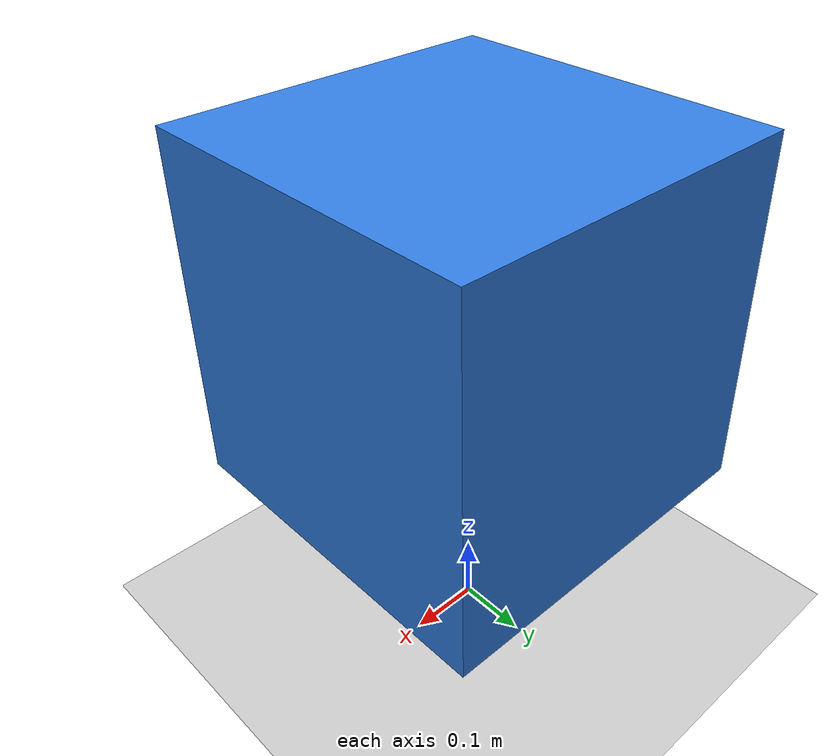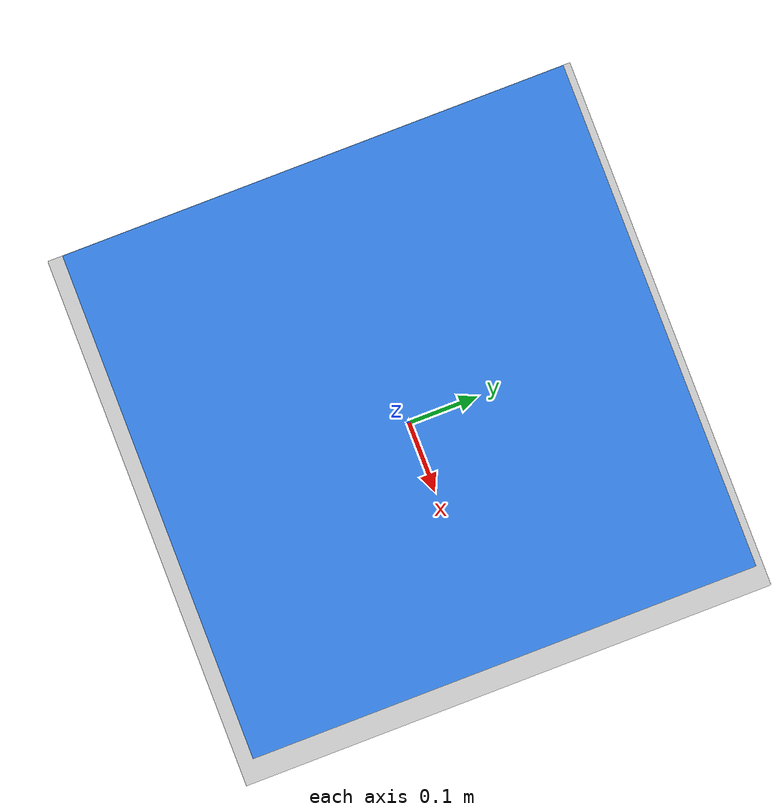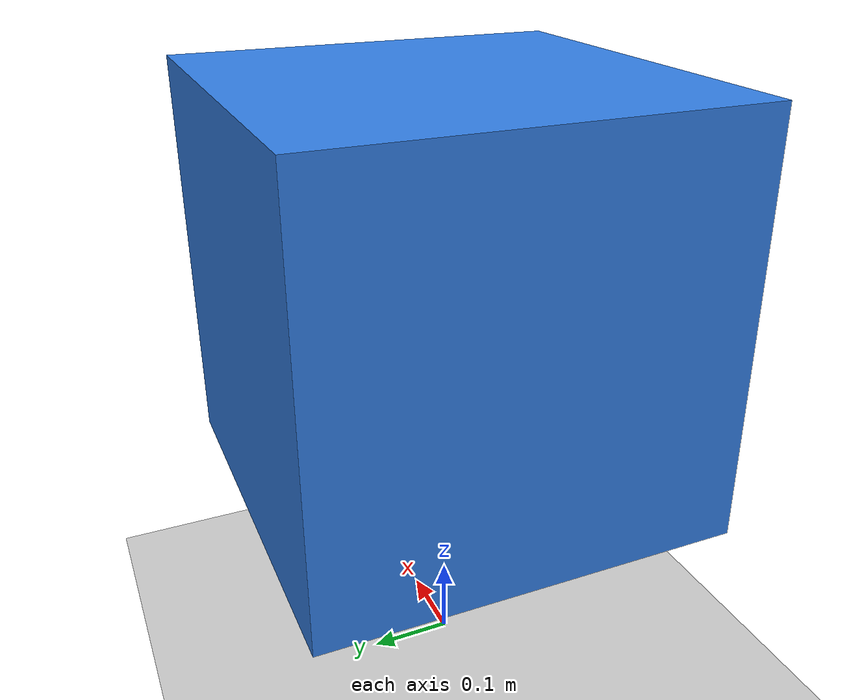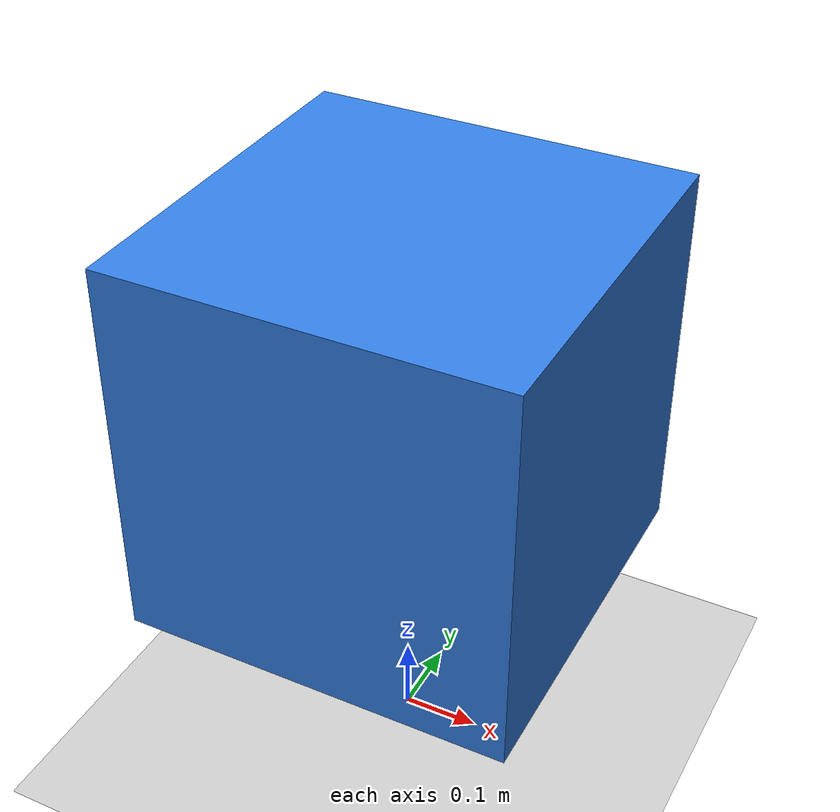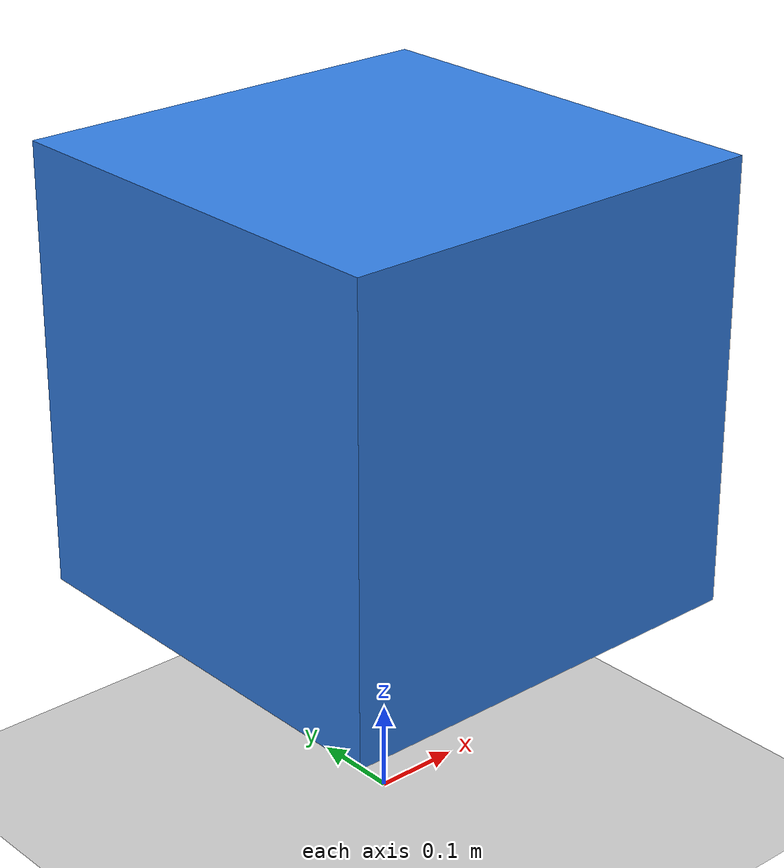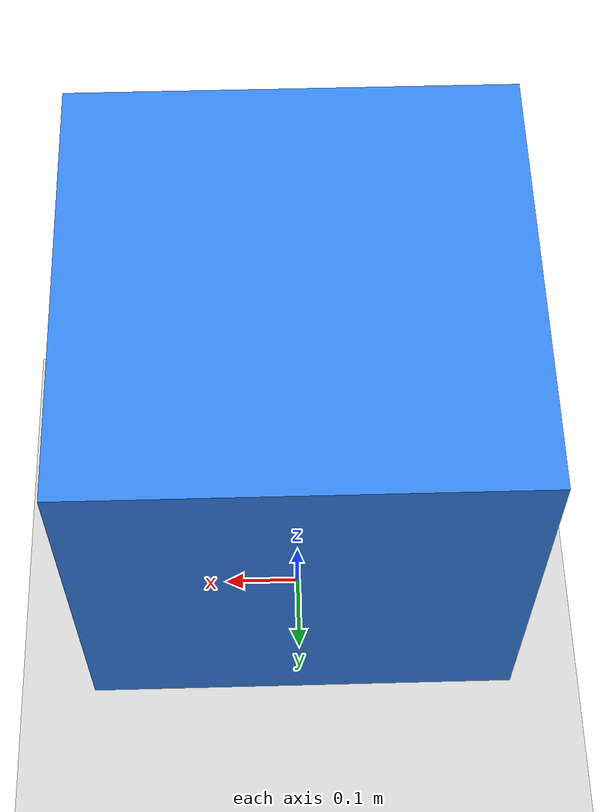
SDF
<?xml version="1.0" ?>
<sdf version="1.9">
  <world name="tts_demo">

    <!-- Physics -->
    <physics name="1ms" type="ignored">
      <max_step_size>0.001</max_step_size>
      <real_time_factor>1.0</real_time_factor>
    </physics>

    <!-- Core Harmonic plugins (NOT gazebo_ros_pkgs) -->
    <plugin
      filename="gz-sim-physics-system"
      name="gz::sim::systems::Physics">
    </plugin>

    <plugin
      filename="gz-sim-user-commands-system"
      name="gz::sim::systems::UserCommands">
    </plugin>

    <plugin
      filename="gz-sim-scene-broadcaster-system"
      name="gz::sim::systems::SceneBroadcaster">
    </plugin>

    <!-- Lighting -->
    <light name="sun" type="directional">
      <cast_shadows>true</cast_shadows>
      <pose>0 0 10 0 0 0</pose>
      <diffuse>0.8 0.8 0.8 1</diffuse>
      <specular>0.2 0.2 0.2 1</specular>
      <direction>-0.5 0.1 -0.9</direction>
    </light>

    <!-- Ground plane -->
    <model name="ground_plane">
      <static>true</static>
      <link name="link">
        <collision name="collision">
          <geometry>
            <plane>
              <normal>0 0 1</normal>
              <size>100 100</size>
            </plane>
          </geometry>
        </collision>
        <visual name="visual">
          <geometry>
            <plane>
              <normal>0 0 1</normal>
              <size>100 100</size>
            </plane>
          </geometry>
          <material>
            <ambient>0.8 0.8 0.8 1</ambient>
            <diffuse>0.8 0.8 0.8 1</diffuse>
          </material>
        </visual>
      </link>
    </model>

    <!-- Simple robot box — TTS plugin attached here -->
    <model name="tts_robot">
      <pose>0 0 0.5 0 0 0</pose>

      <link name="body">
        <collision name="collision">
          <geometry><box><size>0.5 0.5 0.5</size></box></geometry>
        </collision>
        <visual name="visual">
          <geometry><box><size>0.5 0.5 0.5</size></box></geometry>
          <material>
            <ambient>0.2 0.5 0.9 1</ambient>
            <diffuse>0.2 0.5 0.9 1</diffuse>
          </material>
        </visual>
      </link>

      <plugin
        filename="gz_ros_tts"
        name="gz_ros_tts::GzRosTts">
        <topic>/robot/speak</topic>
        <tts_engine>espeak</tts_engine>
        <voice>en</voice>
        <rate>150</rate>
      </plugin>

    </model>

  </world>
</sdf>
